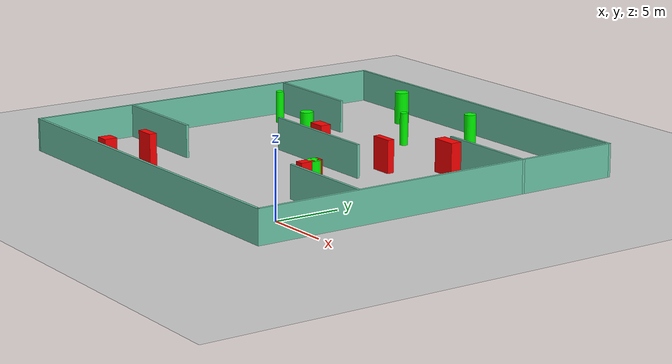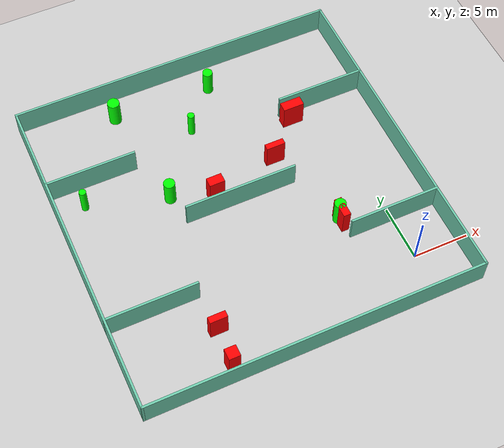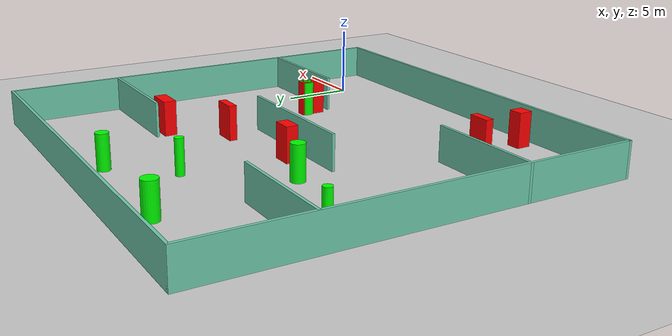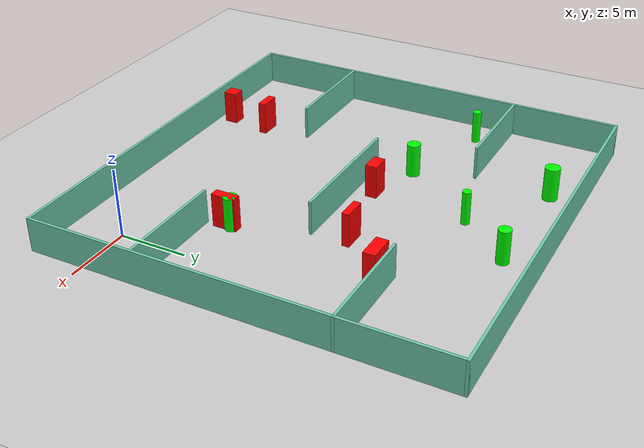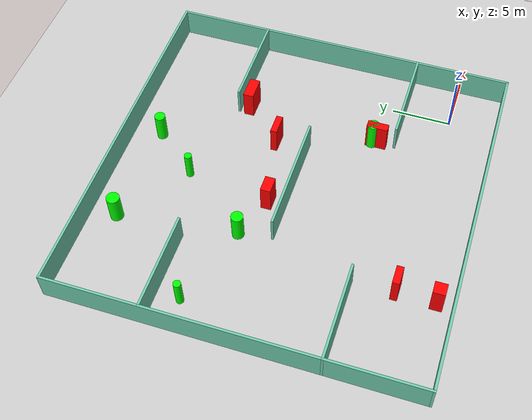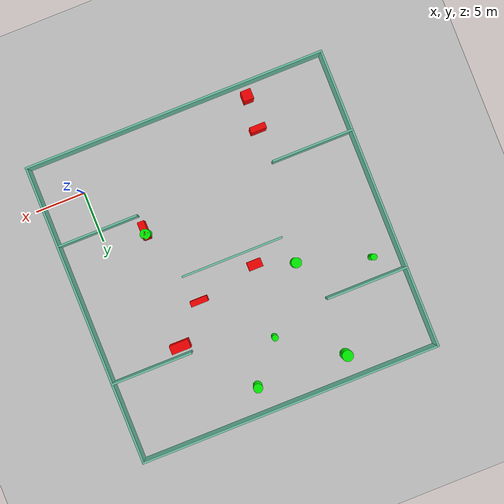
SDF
<sdf version="1.7">
 <world name="default">
  <light name="sun" type="directional">
   <pose>0 0 10 0 -0 0</pose>
   <diffuse>0.8 0.8 0.8 1</diffuse>
   <specular>0.2 0.2 0.2 1</specular>
   <attenuation>
    <range>1000</range>
    <constant>0.9</constant>
    <linear>0.01</linear>
    <quadratic>0.001</quadratic>
   </attenuation>
   <direction>-0.5 0.1 -0.9</direction>
   <spot><inner_angle>0</inner_angle><outer_angle>0</outer_angle><falloff>0</falloff></spot>
  </light>
  <model name="ground_plane">
   <static>1</static>
   <link name="link">
    <collision name="collision">
     <geometry><plane><normal>0 0 1</normal><size>100 100</size></plane></geometry>
     <surface>
      <contact><collide_bitmask>65535</collide_bitmask></contact>
      <friction><ode><mu>100</mu><mu2>50</mu2></ode></friction>
     </surface>
    </collision>
    <visual name="visual">
     <cast_shadows>0</cast_shadows>
     <geometry><plane><normal>0 0 1</normal><size>100 100</size></plane></geometry>
     <material>
      <script><uri>file://media/materials/scripts/gazebo.material</uri><name>Gazebo/Grey</name></script>
     </material>
    </visual>
   </link>
  </model>
  <gravity>0 0 -9.8</gravity>
  <magnetic_field>6e-06 2.3e-05 -4.2e-05</magnetic_field>
  <atmosphere type="adiabatic"/>
  <physics type="ode">
   <max_step_size>0.001</max_step_size>
   <real_time_factor>1</real_time_factor>
   <real_time_update_rate>1000</real_time_update_rate>
  </physics>
  <scene><ambient>0.4 0.4 0.4 1</ambient><background>0.7 0.7 0.7 1</background><shadows>1</shadows></scene>
  <spherical_coordinates>
   <surface_model>EARTH_WGS84</surface_model>
   <latitude_deg>0</latitude_deg>
   <longitude_deg>0</longitude_deg>
   <elevation>0</elevation>
   <heading_deg>0</heading_deg>
  </spherical_coordinates>
  <model name="my_base_walls">
   <link name="Wall_10">
    <collision name="Wall_10_Collision">
     <geometry><box><size>8.2 0.2 2.5</size></box></geometry>
     <pose>0 0 1.25 0 -0 0</pose>
    </collision>
    <visual name="Wall_10_Visual">
     <pose>0 0 1.25 0 -0 0</pose>
     <geometry><box><size>8.2 0.2 2.5</size></box></geometry>
     <material>
      <script><uri>file://media/materials/scripts/gazebo.material</uri><name>Gazebo/Grey</name></script>
      <ambient>0.435294 0.796078 0.67451 1</ambient>
     </material>
     <meta><layer>0</layer></meta>
    </visual>
    <pose>-11 -7 0 0 -0 0</pose>
   </link>
   <link name="Wall_12">
    <collision name="Wall_12_Collision">
     <geometry><box><size>8.2 0.2 2.5</size></box></geometry>
     <pose>0 0 1.25 0 -0 0</pose>
    </collision>
    <visual name="Wall_12_Visual">
     <pose>0 0 1.25 0 -0 0</pose>
     <geometry><box><size>8.2 0.2 2.5</size></box></geometry>
     <material>
      <script><uri>file://media/materials/scripts/gazebo.material</uri><name>Gazebo/Grey</name></script>
      <ambient>0.435294 0.796078 0.67451 1</ambient>
     </material>
     <meta><layer>0</layer></meta>
    </visual>
    <pose>-11 7 0 0 -0 0</pose>
   </link>
   <link name="Wall_14">
    <collision name="Wall_14_Collision">
     <geometry><box><size>8.2 0.2 2.5</size></box></geometry>
     <pose>0 0 1.25 0 -0 0</pose>
    </collision>
    <visual name="Wall_14_Visual">
     <pose>0 0 1.25 0 -0 0</pose>
     <geometry><box><size>8.2 0.2 2.5</size></box></geometry>
     <material>
      <script><uri>file://media/materials/scripts/gazebo.material</uri><name>Gazebo/Grey</name></script>
      <ambient>0.435294 0.796078 0.67451 1</ambient>
     </material>
     <meta><layer>0</layer></meta>
    </visual>
    <pose>11 7 0 0 -0 3.14159</pose>
   </link>
   <link name="Wall_16">
    <collision name="Wall_16_Collision">
     <geometry><box><size>10.2 0.2 2.5</size></box></geometry>
     <pose>0 0 1.25 0 -0 0</pose>
    </collision>
    <visual name="Wall_16_Visual">
     <pose>0 0 1.25 0 -0 0</pose>
     <geometry><box><size>10.2 0.2 2.5</size></box></geometry>
     <material>
      <script><uri>file://media/materials/scripts/gazebo.material</uri><name>Gazebo/Grey</name></script>
      <ambient>0.435294 0.796078 0.67451 1</ambient>
     </material>
     <meta><layer>0</layer></meta>
    </visual>
    <pose>0 0 0 0 -0 3.14159</pose>
   </link>
   <link name="Wall_2">
    <collision name="Wall_2_Collision">
     <geometry><box><size>30.2 0.2 2.5</size></box></geometry>
     <pose>0 0 1.25 0 -0 0</pose>
    </collision>
    <visual name="Wall_2_Visual">
     <pose>0 0 1.25 0 -0 0</pose>
     <geometry><box><size>30.2 0.2 2.5</size></box></geometry>
     <material>
      <script><uri>file://media/materials/scripts/gazebo.material</uri><name>Gazebo/Grey</name></script>
      <ambient>0.435294 0.796078 0.67451 1</ambient>
     </material>
     <meta><layer>0</layer></meta>
    </visual>
    <pose>0 -15 0 0 -0 3.14159</pose>
   </link>
   <link name="Wall_3">
    <collision name="Wall_3_Collision">
     <geometry><box><size>30.2 0.2 2.5</size></box></geometry>
     <pose>0 0 1.25 0 -0 0</pose>
    </collision>
    <visual name="Wall_3_Visual">
     <pose>0 0 1.25 0 -0 0</pose>
     <geometry><box><size>30.2 0.2 2.5</size></box></geometry>
     <material>
      <script><uri>file://media/materials/scripts/gazebo.material</uri><name>Gazebo/Grey</name></script>
      <ambient>0.435294 0.796078 0.67451 1</ambient>
     </material>
     <meta><layer>0</layer></meta>
    </visual>
    <pose>-15 0 0 0 -0 1.5708</pose>
   </link>
   <link name="Wall_4">
    <collision name="Wall_4_Collision">
     <geometry><box><size>30.2 0.2 2.5</size></box></geometry>
     <pose>0 0 1.25 0 -0 0</pose>
    </collision>
    <visual name="Wall_4_Visual">
     <pose>0 0 1.25 0 -0 0</pose>
     <geometry><box><size>30.2 0.2 2.5</size></box></geometry>
     <material>
      <script><uri>file://media/materials/scripts/gazebo.material</uri><name>Gazebo/Grey</name></script>
      <ambient>0.435294 0.796078 0.67451 1</ambient>
     </material>
     <meta><layer>0</layer></meta>
    </visual>
    <pose>0 15 0 0 -0 0</pose>
   </link>
   <link name="Wall_6">
    <collision name="Wall_6_Collision">
     <geometry><box><size>30.2 0.2 2.5</size></box></geometry>
     <pose>0 0 1.25 0 -0 0</pose>
    </collision>
    <visual name="Wall_6_Visual">
     <pose>0 0 1.25 0 -0 0</pose>
     <geometry><box><size>30.2 0.2 2.5</size></box></geometry>
     <material>
      <script><uri>file://media/materials/scripts/gazebo.material</uri><name>Gazebo/Grey</name></script>
      <ambient>0.435294 0.796078 0.67451 1</ambient>
     </material>
     <meta><layer>0</layer></meta>
    </visual>
    <pose>15 0 0 0 -0 1.5708</pose>
   </link>
   <link name="Wall_8">
    <collision name="Wall_8_Collision">
     <geometry><box><size>8.2 0.2 2.5</size></box></geometry>
     <pose>0 0 1.25 0 -0 0</pose>
    </collision>
    <visual name="Wall_8_Visual">
     <pose>0 0 1.25 0 -0 0</pose>
     <geometry><box><size>8.2 0.2 2.5</size></box></geometry>
     <material>
      <script><uri>file://media/materials/scripts/gazebo.material</uri><name>Gazebo/Grey</name></script>
      <ambient>0.435294 0.796078 0.67451 1</ambient>
     </material>
     <meta><layer>0</layer></meta>
    </visual>
    <pose>11 -7 0 0 -0 3.14159</pose>
   </link>
   <static>1</static>
   <pose>-11 11 0 0 -0 0</pose>
  </model>
  <model name="cylinder1">
   <static>1</static>
   <link name="link">
    <inertial>
     <mass>1</mass>
     <inertia><ixx>0.5</ixx><ixy>0</ixy><ixz>0</ixz><iyy>0.5</iyy><iyz>0</iyz><izz>1</izz></inertia>
    </inertial>
    <collision name="collision">
     <geometry><cylinder><radius>0.4548986806814599</radius><length>2.5</length></cylinder></geometry>
    </collision>
    <visual name="visual">
     <geometry><cylinder><radius>0.4548986806814599</radius><length>2.5</length></cylinder></geometry>
     <material>
      <ambient>0 1 0 1</ambient>
      <diffuse>0 1 0 1</diffuse>
      <specular>0.1 0.1 0.1 1</specular>
      <emissive>0 0 0 0</emissive>
     </material>
    </visual>
   </link>
   <pose>-8.701037544144373 23.44155083939435 1.25 0 0 0</pose>
  </model>
  <model name="cylinder2">
   <static>1</static>
   <link name="link">
    <inertial>
     <mass>1</mass>
     <inertia><ixx>0.5</ixx><ixy>0</ixy><ixz>0</ixz><iyy>0.5</iyy><iyz>0</iyz><izz>1</izz></inertia>
    </inertial>
    <collision name="collision">
     <geometry><cylinder><radius>0.5022770543103352</radius><length>2.5</length></cylinder></geometry>
    </collision>
    <visual name="visual">
     <geometry><cylinder><radius>0.5022770543103352</radius><length>2.5</length></cylinder></geometry>
     <material>
      <ambient>0 1 0 1</ambient>
      <diffuse>0 1 0 1</diffuse>
      <specular>0.1 0.1 0.1 1</specular>
      <emissive>0 0 0 0</emissive>
     </material>
    </visual>
   </link>
   <pose>-16.451965289486544 13.752903179521649 1.25 0 0 0</pose>
  </model>
  <model name="cylinder3">
   <static>1</static>
   <link name="link">
    <inertial>
     <mass>1</mass>
     <inertia><ixx>0.5</ixx><ixy>0</ixy><ixz>0</ixz><iyy>0.5</iyy><iyz>0</iyz><izz>1</izz></inertia>
    </inertial>
    <collision name="collision">
     <geometry><cylinder><radius>0.5485218189931921</radius><length>2.5</length></cylinder></geometry>
    </collision>
    <visual name="visual">
     <geometry><cylinder><radius>0.5485218189931921</radius><length>2.5</length></cylinder></geometry>
     <material>
      <ambient>0 1 0 1</ambient>
      <diffuse>0 1 0 1</diffuse>
      <specular>0.1 0.1 0.1 1</specular>
      <emissive>0 0 0 0</emissive>
     </material>
    </visual>
   </link>
   <pose>-17.712785907975242 23.719906598696287 1.25 0 0 0</pose>
  </model>
  <model name="cylinder4">
   <static>1</static>
   <link name="link">
    <inertial>
     <mass>1</mass>
     <inertia><ixx>0.5</ixx><ixy>0</ixy><ixz>0</ixz><iyy>0.5</iyy><iyz>0</iyz><izz>1</izz></inertia>
    </inertial>
    <collision name="collision">
     <geometry><cylinder><radius>0.5085495411112008</radius><length>2.5</length></cylinder></geometry>
    </collision>
    <visual name="visual">
     <geometry><cylinder><radius>0.5085495411112008</radius><length>2.5</length></cylinder></geometry>
     <material>
      <ambient>0 1 0 1</ambient>
      <diffuse>0 1 0 1</diffuse>
      <specular>0.1 0.1 0.1 1</specular>
      <emissive>0 0 0 0</emissive>
     </material>
    </visual>
   </link>
   <pose>-4.151835418285295 5.951541850779574 1.25 0 0 0</pose>
  </model>
  <model name="cylinder5">
   <static>1</static>
   <link name="link">
    <inertial>
     <mass>1</mass>
     <inertia><ixx>0.5</ixx><ixy>0</ixy><ixz>0</ixz><iyy>0.5</iyy><iyz>0</iyz><izz>1</izz></inertia>
    </inertial>
    <collision name="collision">
     <geometry><cylinder><radius>0.31573301214556737</radius><length>2.5</length></cylinder></geometry>
    </collision>
    <visual name="visual">
     <geometry><cylinder><radius>0.31573301214556737</radius><length>2.5</length></cylinder></geometry>
     <material>
      <ambient>0 1 0 1</ambient>
      <diffuse>0 1 0 1</diffuse>
      <specular>0.1 0.1 0.1 1</specular>
      <emissive>0 0 0 0</emissive>
     </material>
    </visual>
   </link>
   <pose>-23.457830425198797 15.951546501620417 1.25 0 0 0</pose>
  </model>
  <model name="cylinder6">
   <static>1</static>
   <link name="link">
    <inertial>
     <mass>1</mass>
     <inertia><ixx>0.5</ixx><ixy>0</ixy><ixz>0</ixz><iyy>0.5</iyy><iyz>0</iyz><izz>1</izz></inertia>
    </inertial>
    <collision name="collision">
     <geometry><cylinder><radius>0.31347059021409285</radius><length>2.5</length></cylinder></geometry>
    </collision>
    <visual name="visual">
     <geometry><cylinder><radius>0.31347059021409285</radius><length>2.5</length></cylinder></geometry>
     <material>
      <ambient>0 1 0 1</ambient>
      <diffuse>0 1 0 1</diffuse>
      <specular>0.1 0.1 0.1 1</specular>
      <emissive>0 0 0 0</emissive>
     </material>
    </visual>
   </link>
   <pose>-11.958290527748392 19.617613234114742 1.25 0 0 0</pose>
  </model>
  <model name="box1">
   <static>1</static>
   <link name="link">
    <inertial>
     <mass>1</mass>
     <inertia><ixx>0.083</ixx><ixy>0</ixy><ixz>0</ixz><iyy>0.083</iyy><iyz>0</iyz><izz>0.083</izz></inertia>
    </inertial>
    <collision name="collision">
     <geometry><box><size>0.671636397011404 1.7861668952964638 2.5</size></box></geometry>
    </collision>
    <visual name="visual">
     <geometry><box><size>0.671636397011404 1.7861668952964638 2.5</size></box></geometry>
     <material>
      <ambient>1 0 0 1</ambient>
      <diffuse>1 0 0 1</diffuse>
      <specular>0.1 0.1 0.1 1</specular>
      <emissive>0 0 0 0</emissive>
     </material>
    </visual>
    <sensor name="my_contact" type="contact">
     <contact><collision>box_collision</collision><topic>__default_topic__</topic></contact>
    </sensor>
   </link>
   <pose>-4.155527384651741 5.567551781284491 1.25 0 0 0</pose>
  </model>
  <model name="box2">
   <static>1</static>
   <link name="link">
    <inertial>
     <mass>1</mass>
     <inertia><ixx>0.083</ixx><ixy>0</ixy><ixz>0</ixz><iyy>0.083</iyy><iyz>0</iyz><izz>0.083</izz></inertia>
    </inertial>
    <collision name="collision">
     <geometry><box><size>1.3954438654754455 0.858223635632108 2.5</size></box></geometry>
    </collision>
    <visual name="visual">
     <geometry><box><size>1.3954438654754455 0.858223635632108 2.5</size></box></geometry>
     <material>
      <ambient>1 0 0 1</ambient>
      <diffuse>1 0 0 1</diffuse>
      <specular>0.1 0.1 0.1 1</specular>
      <emissive>0 0 0 0</emissive>
     </material>
    </visual>
    <sensor name="my_contact" type="contact">
     <contact><collision>box_collision</collision><topic>__default_topic__</topic></contact>
    </sensor>
   </link>
   <pose>-12.738836958310342 12.4479263120753 1.25 0 0 0</pose>
  </model>
  <model name="box3">
   <static>1</static>
   <link name="link">
    <inertial>
     <mass>1</mass>
     <inertia><ixx>0.083</ixx><ixy>0</ixy><ixz>0</ixz><iyy>0.083</iyy><iyz>0</iyz><izz>0.083</izz></inertia>
    </inertial>
    <collision name="collision">
     <geometry><box><size>1.0053398977392125 1.0077352463681795 2.5</size></box></geometry>
    </collision>
    <visual name="visual">
     <geometry><box><size>1.0053398977392125 1.0077352463681795 2.5</size></box></geometry>
     <material>
      <ambient>1 0 0 1</ambient>
      <diffuse>1 0 0 1</diffuse>
      <specular>0.1 0.1 0.1 1</specular>
      <emissive>0 0 0 0</emissive>
     </material>
    </visual>
    <sensor name="my_contact" type="contact">
     <contact><collision>box_collision</collision><topic>__default_topic__</topic></contact>
    </sensor>
   </link>
   <pose>-17.975614065153167 -2.7049930458573943 1.25 0 0 0</pose>
  </model>
  <model name="box4">
   <static>1</static>
   <link name="link">
    <inertial>
     <mass>1</mass>
     <inertia><ixx>0.083</ixx><ixy>0</ixy><ixz>0</ixz><iyy>0.083</iyy><iyz>0</iyz><izz>0.083</izz></inertia>
    </inertial>
    <collision name="collision">
     <geometry><box><size>1.5639189523461325 0.5825262701930338 2.5</size></box></geometry>
    </collision>
    <visual name="visual">
     <geometry><box><size>1.5639189523461325 0.5825262701930338 2.5</size></box></geometry>
     <material>
      <ambient>1 0 0 1</ambient>
      <diffuse>1 0 0 1</diffuse>
      <specular>0.1 0.1 0.1 1</specular>
      <emissive>0 0 0 0</emissive>
     </material>
    </visual>
    <sensor name="my_contact" type="contact">
     <contact><collision>box_collision</collision><topic>__default_topic__</topic></contact>
    </sensor>
   </link>
   <pose>-17.790173450749606 0.5360738935949767 1.25 0 0 0</pose>
  </model>
  <model name="box5">
   <static>1</static>
   <link name="link">
    <inertial>
     <mass>1</mass>
     <inertia><ixx>0.083</ixx><ixy>0</ixy><ixz>0</ixz><iyy>0.083</iyy><iyz>0</iyz><izz>0.083</izz></inertia>
    </inertial>
    <collision name="collision">
     <geometry><box><size>1.9142339825357741 0.881415391436666 2.5</size></box></geometry>
    </collision>
    <visual name="visual">
     <geometry><box><size>1.9142339825357741 0.881415391436666 2.5</size></box></geometry>
     <material>
      <ambient>1 0 0 1</ambient>
      <diffuse>1 0 0 1</diffuse>
      <specular>0.1 0.1 0.1 1</specular>
      <emissive>0 0 0 0</emissive>
     </material>
    </visual>
    <sensor name="my_contact" type="contact">
     <contact><collision>box_collision</collision><topic>__default_topic__</topic></contact>
    </sensor>
   </link>
   <pose>-3.2700485359617524 17.079124607377732 1.25 0 0 0</pose>
  </model>
  <model name="box6">
   <static>1</static>
   <link name="link">
    <inertial>
     <mass>1</mass>
     <inertia><ixx>0.083</ixx><ixy>0</ixy><ixz>0</ixz><iyy>0.083</iyy><iyz>0</iyz><izz>0.083</izz></inertia>
    </inertial>
    <collision name="collision">
     <geometry><box><size>1.719000417889129 0.5505052901170263 2.5</size></box></geometry>
    </collision>
    <visual name="visual">
     <geometry><box><size>1.719000417889129 0.5505052901170263 2.5</size></box></geometry>
     <material>
      <ambient>1 0 0 1</ambient>
      <diffuse>1 0 0 1</diffuse>
      <specular>0.1 0.1 0.1 1</specular>
      <emissive>0 0 0 0</emissive>
     </material>
    </visual>
    <sensor name="my_contact" type="contact">
     <contact><collision>box_collision</collision><topic>__default_topic__</topic></contact>
    </sensor>
   </link>
   <pose>-6.539984883626257 13.734644198149383 1.25 0 0 0</pose>
  </model>
 </world>
</sdf>
